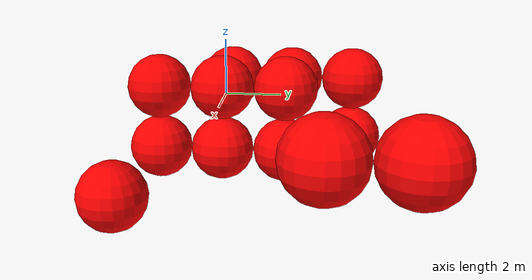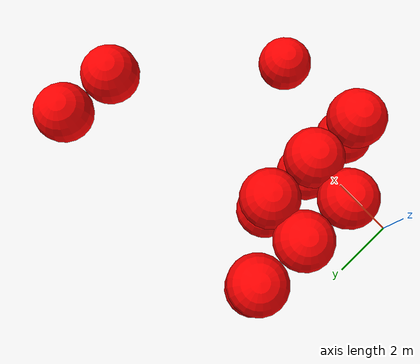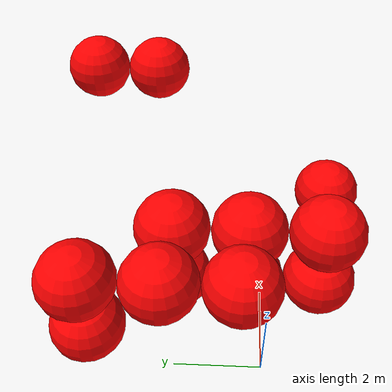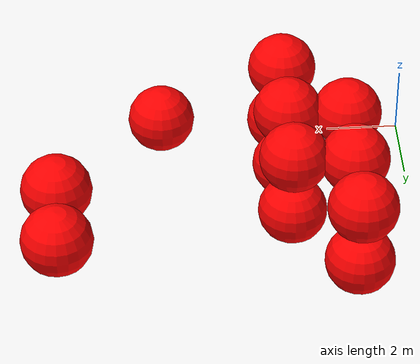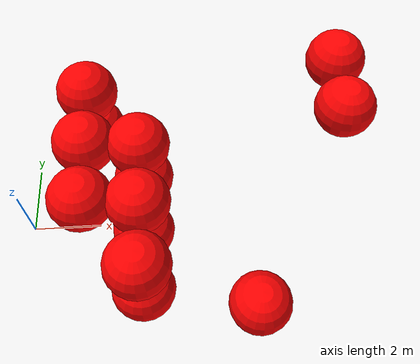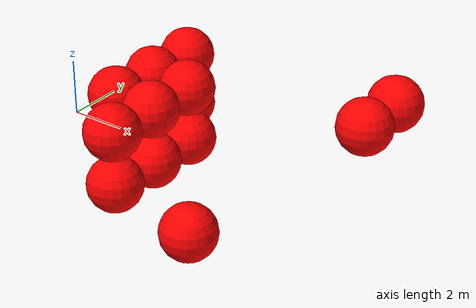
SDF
<sdf version="1.8">
 <world name="3d_world">
  <model name="obstacle_11" canonical_link="obstacle">
   <static>true</static>
   <pose relative_to="world">1.52 4.45 -1.00 0 0 0</pose>
   <link name="obstacle">
    <pose relative_to="__model__">0.0 0 0.0 0 0 0</pose>
    <visual name="visual">
     <geometry><sphere><radius>1.00</radius></sphere></geometry>
     <material>
      <ambient>1.0 0.0 0.0 1</ambient>
      <diffuse>1.0 0.0 0.0 1</diffuse>
      <specular>1.0 0.0 0.0 1</specular>
     </material>
    </visual>
    <collision name="collision"><geometry><sphere><radius>1.00</radius></sphere></geometry></collision>
    <enable_gravity>false</enable_gravity>
   </link>
   <plugin filename="ignition-gazebo-velocity-control-system" name="ignition::gazebo::systems::VelocityControl">
    <initial_linear>0.00 0.00 0.00</initial_linear>
    <initial_angular>0 0 0</initial_angular>
   </plugin>
   <plugin filename="ignition-gazebo-odometry-publisher-system" name="ignition::gazebo::systems::OdometryPublisher">
    <dimensions>3</dimensions>
   </plugin>
  </model>
  <model name="obstacle_12" canonical_link="obstacle">
   <static>true</static>
   <pose relative_to="world">1.52 0.45 1.00 0 0 0</pose>
   <link name="obstacle">
    <pose relative_to="__model__">0.0 0 0.0 0 0 0</pose>
    <visual name="visual">
     <geometry><sphere><radius>1.00</radius></sphere></geometry>
     <material>
      <ambient>1.0 0.0 0.0 1</ambient>
      <diffuse>1.0 0.0 0.0 1</diffuse>
      <specular>1.0 0.0 0.0 1</specular>
     </material>
    </visual>
    <collision name="collision"><geometry><sphere><radius>1.00</radius></sphere></geometry></collision>
    <enable_gravity>false</enable_gravity>
   </link>
   <plugin filename="ignition-gazebo-velocity-control-system" name="ignition::gazebo::systems::VelocityControl">
    <initial_linear>0.00 0.00 0.00</initial_linear>
    <initial_angular>0 0 0</initial_angular>
   </plugin>
   <plugin filename="ignition-gazebo-odometry-publisher-system" name="ignition::gazebo::systems::OdometryPublisher">
    <dimensions>3</dimensions>
   </plugin>
  </model>
  <model name="obstacle_13" canonical_link="obstacle">
   <static>true</static>
   <pose relative_to="world">1.52 2.45 1.00 0 0 0</pose>
   <link name="obstacle">
    <pose relative_to="__model__">0.0 0 0.0 0 0 0</pose>
    <visual name="visual">
     <geometry><sphere><radius>1.00</radius></sphere></geometry>
     <material>
      <ambient>1.0 0.0 0.0 1</ambient>
      <diffuse>1.0 0.0 0.0 1</diffuse>
      <specular>1.0 0.0 0.0 1</specular>
     </material>
    </visual>
    <collision name="collision"><geometry><sphere><radius>1.00</radius></sphere></geometry></collision>
    <enable_gravity>false</enable_gravity>
   </link>
   <plugin filename="ignition-gazebo-velocity-control-system" name="ignition::gazebo::systems::VelocityControl">
    <initial_linear>0.00 0.00 0.00</initial_linear>
    <initial_angular>0 0 0</initial_angular>
   </plugin>
   <plugin filename="ignition-gazebo-odometry-publisher-system" name="ignition::gazebo::systems::OdometryPublisher">
    <dimensions>3</dimensions>
   </plugin>
  </model>
  <model name="obstacle_14" canonical_link="obstacle">
   <static>true</static>
   <pose relative_to="world">1.52 4.45 1.00 0 0 0</pose>
   <link name="obstacle">
    <pose relative_to="__model__">0.0 0 0.0 0 0 0</pose>
    <visual name="visual">
     <geometry><sphere><radius>1.00</radius></sphere></geometry>
     <material>
      <ambient>1.0 0.0 0.0 1</ambient>
      <diffuse>1.0 0.0 0.0 1</diffuse>
      <specular>1.0 0.0 0.0 1</specular>
     </material>
    </visual>
    <collision name="collision"><geometry><sphere><radius>1.00</radius></sphere></geometry></collision>
    <enable_gravity>false</enable_gravity>
   </link>
   <plugin filename="ignition-gazebo-velocity-control-system" name="ignition::gazebo::systems::VelocityControl">
    <initial_linear>0.00 0.00 0.00</initial_linear>
    <initial_angular>0 0 0</initial_angular>
   </plugin>
   <plugin filename="ignition-gazebo-odometry-publisher-system" name="ignition::gazebo::systems::OdometryPublisher">
    <dimensions>3</dimensions>
   </plugin>
  </model>
  <model name="obstacle_15" canonical_link="obstacle">
   <static>true</static>
   <pose relative_to="world">3.22 -1.71 -1.00 0 0 0</pose>
   <link name="obstacle">
    <pose relative_to="__model__">0.0 0 0.0 0 0 0</pose>
    <visual name="visual">
     <geometry><sphere><radius>1.00</radius></sphere></geometry>
     <material>
      <ambient>1.0 0.0 0.0 1</ambient>
      <diffuse>1.0 0.0 0.0 1</diffuse>
      <specular>1.0 0.0 0.0 1</specular>
     </material>
    </visual>
    <collision name="collision"><geometry><sphere><radius>1.00</radius></sphere></geometry></collision>
    <enable_gravity>false</enable_gravity>
   </link>
   <plugin filename="ignition-gazebo-velocity-control-system" name="ignition::gazebo::systems::VelocityControl">
    <initial_linear>0.00 0.00 0.00</initial_linear>
    <initial_angular>0 0 0</initial_angular>
   </plugin>
   <plugin filename="ignition-gazebo-odometry-publisher-system" name="ignition::gazebo::systems::OdometryPublisher">
    <dimensions>3</dimensions>
   </plugin>
  </model>
  <model name="obstacle_16" canonical_link="obstacle">
   <static>true</static>
   <pose relative_to="world">3.22 0.29 -1.00 0 0 0</pose>
   <link name="obstacle">
    <pose relative_to="__model__">0.0 0 0.0 0 0 0</pose>
    <visual name="visual">
     <geometry><sphere><radius>1.00</radius></sphere></geometry>
     <material>
      <ambient>1.0 0.0 0.0 1</ambient>
      <diffuse>1.0 0.0 0.0 1</diffuse>
      <specular>1.0 0.0 0.0 1</specular>
     </material>
    </visual>
    <collision name="collision"><geometry><sphere><radius>1.00</radius></sphere></geometry></collision>
    <enable_gravity>false</enable_gravity>
   </link>
   <plugin filename="ignition-gazebo-velocity-control-system" name="ignition::gazebo::systems::VelocityControl">
    <initial_linear>0.00 0.00 0.00</initial_linear>
    <initial_angular>0 0 0</initial_angular>
   </plugin>
   <plugin filename="ignition-gazebo-odometry-publisher-system" name="ignition::gazebo::systems::OdometryPublisher">
    <dimensions>3</dimensions>
   </plugin>
  </model>
  <model name="obstacle_17" canonical_link="obstacle">
   <static>true</static>
   <pose relative_to="world">3.22 2.29 -1.00 0 0 0</pose>
   <link name="obstacle">
    <pose relative_to="__model__">0.0 0 0.0 0 0 0</pose>
    <visual name="visual">
     <geometry><sphere><radius>1.00</radius></sphere></geometry>
     <material>
      <ambient>1.0 0.0 0.0 1</ambient>
      <diffuse>1.0 0.0 0.0 1</diffuse>
      <specular>1.0 0.0 0.0 1</specular>
     </material>
    </visual>
    <collision name="collision"><geometry><sphere><radius>1.00</radius></sphere></geometry></collision>
    <enable_gravity>false</enable_gravity>
   </link>
   <plugin filename="ignition-gazebo-velocity-control-system" name="ignition::gazebo::systems::VelocityControl">
    <initial_linear>0.00 0.00 0.00</initial_linear>
    <initial_angular>0 0 0</initial_angular>
   </plugin>
   <plugin filename="ignition-gazebo-odometry-publisher-system" name="ignition::gazebo::systems::OdometryPublisher">
    <dimensions>3</dimensions>
   </plugin>
  </model>
  <model name="obstacle_18" canonical_link="obstacle">
   <static>true</static>
   <pose relative_to="world">3.22 -1.71 1.00 0 0 0</pose>
   <link name="obstacle">
    <pose relative_to="__model__">0.0 0 0.0 0 0 0</pose>
    <visual name="visual">
     <geometry><sphere><radius>1.00</radius></sphere></geometry>
     <material>
      <ambient>1.0 0.0 0.0 1</ambient>
      <diffuse>1.0 0.0 0.0 1</diffuse>
      <specular>1.0 0.0 0.0 1</specular>
     </material>
    </visual>
    <collision name="collision"><geometry><sphere><radius>1.00</radius></sphere></geometry></collision>
    <enable_gravity>false</enable_gravity>
   </link>
   <plugin filename="ignition-gazebo-velocity-control-system" name="ignition::gazebo::systems::VelocityControl">
    <initial_linear>0.00 0.00 0.00</initial_linear>
    <initial_angular>0 0 0</initial_angular>
   </plugin>
   <plugin filename="ignition-gazebo-odometry-publisher-system" name="ignition::gazebo::systems::OdometryPublisher">
    <dimensions>3</dimensions>
   </plugin>
  </model>
  <model name="obstacle_19" canonical_link="obstacle">
   <static>true</static>
   <pose relative_to="world">3.22 0.29 1.00 0 0 0</pose>
   <link name="obstacle">
    <pose relative_to="__model__">0.0 0 0.0 0 0 0</pose>
    <visual name="visual">
     <geometry><sphere><radius>1.00</radius></sphere></geometry>
     <material>
      <ambient>1.0 0.0 0.0 1</ambient>
      <diffuse>1.0 0.0 0.0 1</diffuse>
      <specular>1.0 0.0 0.0 1</specular>
     </material>
    </visual>
    <collision name="collision"><geometry><sphere><radius>1.00</radius></sphere></geometry></collision>
    <enable_gravity>false</enable_gravity>
   </link>
   <plugin filename="ignition-gazebo-velocity-control-system" name="ignition::gazebo::systems::VelocityControl">
    <initial_linear>0.00 0.00 0.00</initial_linear>
    <initial_angular>0 0 0</initial_angular>
   </plugin>
   <plugin filename="ignition-gazebo-odometry-publisher-system" name="ignition::gazebo::systems::OdometryPublisher">
    <dimensions>3</dimensions>
   </plugin>
  </model>
  <model name="obstacle_20" canonical_link="obstacle">
   <static>true</static>
   <pose relative_to="world">3.22 2.29 1.00 0 0 0</pose>
   <link name="obstacle">
    <pose relative_to="__model__">0.0 0 0.0 0 0 0</pose>
    <visual name="visual">
     <geometry><sphere><radius>1.00</radius></sphere></geometry>
     <material>
      <ambient>1.0 0.0 0.0 1</ambient>
      <diffuse>1.0 0.0 0.0 1</diffuse>
      <specular>1.0 0.0 0.0 1</specular>
     </material>
    </visual>
    <collision name="collision"><geometry><sphere><radius>1.00</radius></sphere></geometry></collision>
    <enable_gravity>false</enable_gravity>
   </link>
   <plugin filename="ignition-gazebo-velocity-control-system" name="ignition::gazebo::systems::VelocityControl">
    <initial_linear>0.00 0.00 0.00</initial_linear>
    <initial_angular>0 0 0</initial_angular>
   </plugin>
   <plugin filename="ignition-gazebo-odometry-publisher-system" name="ignition::gazebo::systems::OdometryPublisher">
    <dimensions>3</dimensions>
   </plugin>
  </model>
  <model name="obstacle_21" canonical_link="obstacle">
   <static>false</static>
   <pose relative_to="world">9.90 3.31 1.11 0 0 0</pose>
   <link name="obstacle">
    <pose relative_to="__model__">0.0 0 0.0 0 0 0</pose>
    <visual name="visual">
     <geometry><sphere><radius>1.00</radius></sphere></geometry>
     <material>
      <ambient>1.0 0.0 0.0 1</ambient>
      <diffuse>1.0 0.0 0.0 1</diffuse>
      <specular>1.0 0.0 0.0 1</specular>
     </material>
    </visual>
    <collision name="collision"><geometry><sphere><radius>1.00</radius></sphere></geometry></collision>
    <enable_gravity>false</enable_gravity>
   </link>
   <plugin filename="ignition-gazebo-velocity-control-system" name="ignition::gazebo::systems::VelocityControl">
    <initial_linear>0.00 -1.16 -0.26</initial_linear>
    <initial_angular>0 0 0</initial_angular>
   </plugin>
   <plugin filename="ignition-gazebo-odometry-publisher-system" name="ignition::gazebo::systems::OdometryPublisher">
    <dimensions>3</dimensions>
   </plugin>
  </model>
  <model name="obstacle_22" canonical_link="obstacle">
   <static>false</static>
   <pose relative_to="world">9.90 5.31 1.11 0 0 0</pose>
   <link name="obstacle">
    <pose relative_to="__model__">0.0 0 0.0 0 0 0</pose>
    <visual name="visual">
     <geometry><sphere><radius>1.00</radius></sphere></geometry>
     <material>
      <ambient>1.0 0.0 0.0 1</ambient>
      <diffuse>1.0 0.0 0.0 1</diffuse>
      <specular>1.0 0.0 0.0 1</specular>
     </material>
    </visual>
    <collision name="collision"><geometry><sphere><radius>1.00</radius></sphere></geometry></collision>
    <enable_gravity>false</enable_gravity>
   </link>
   <plugin filename="ignition-gazebo-velocity-control-system" name="ignition::gazebo::systems::VelocityControl">
    <initial_linear>0.00 -1.16 -0.26</initial_linear>
    <initial_angular>0 0 0</initial_angular>
   </plugin>
   <plugin filename="ignition-gazebo-odometry-publisher-system" name="ignition::gazebo::systems::OdometryPublisher">
    <dimensions>3</dimensions>
   </plugin>
  </model>
  <model name="obstacle_23" canonical_link="obstacle">
   <static>false</static>
   <pose relative_to="world">6.80 -2.27 -1.28 0 0 0</pose>
   <link name="obstacle">
    <pose relative_to="__model__">0.0 0 0.0 0 0 0</pose>
    <visual name="visual">
     <geometry><sphere><radius>1.00</radius></sphere></geometry>
     <material>
      <ambient>1.0 0.0 0.0 1</ambient>
      <diffuse>1.0 0.0 0.0 1</diffuse>
      <specular>1.0 0.0 0.0 1</specular>
     </material>
    </visual>
    <collision name="collision"><geometry><sphere><radius>1.00</radius></sphere></geometry></collision>
    <enable_gravity>false</enable_gravity>
   </link>
   <plugin filename="ignition-gazebo-velocity-control-system" name="ignition::gazebo::systems::VelocityControl">
    <initial_linear>0.00 1.27 0.58</initial_linear>
    <initial_angular>0 0 0</initial_angular>
   </plugin>
   <plugin filename="ignition-gazebo-odometry-publisher-system" name="ignition::gazebo::systems::OdometryPublisher">
    <dimensions>3</dimensions>
   </plugin>
  </model>
 </world>
</sdf>
